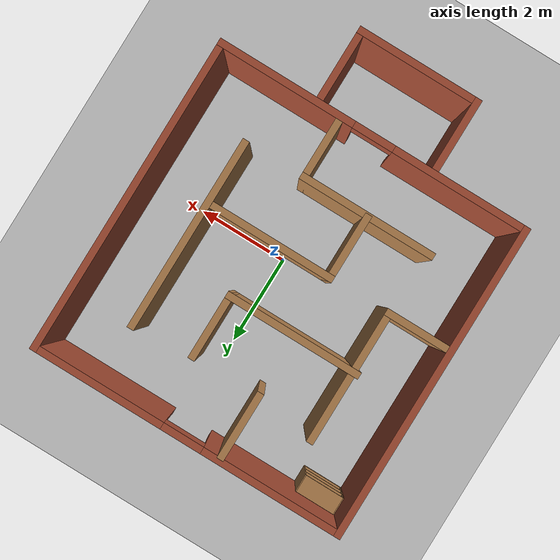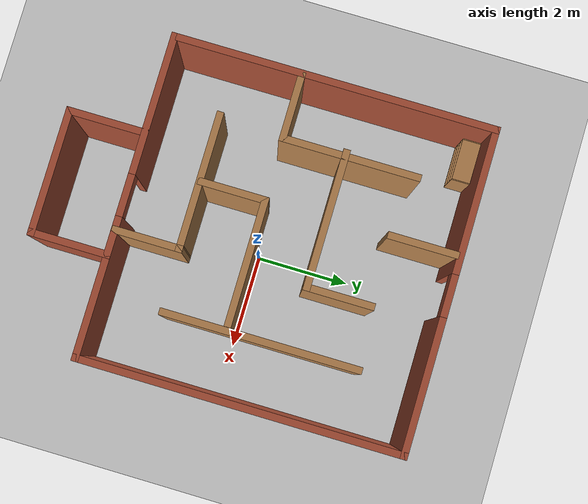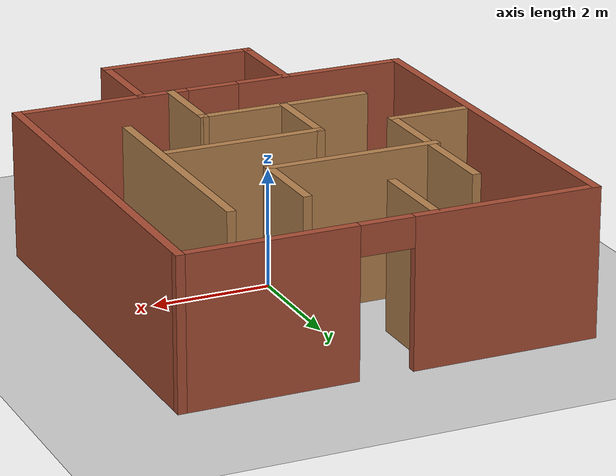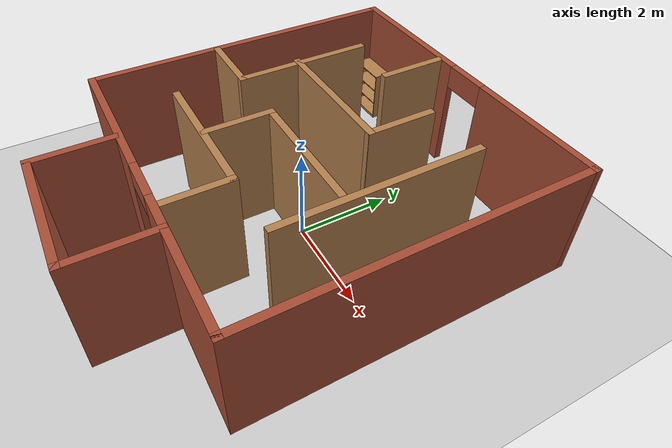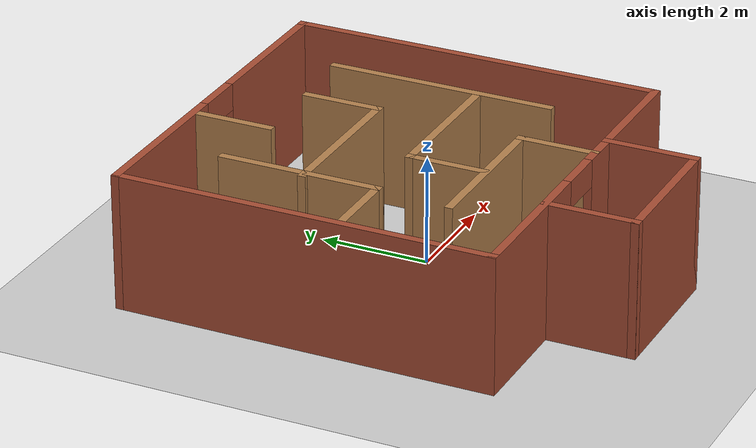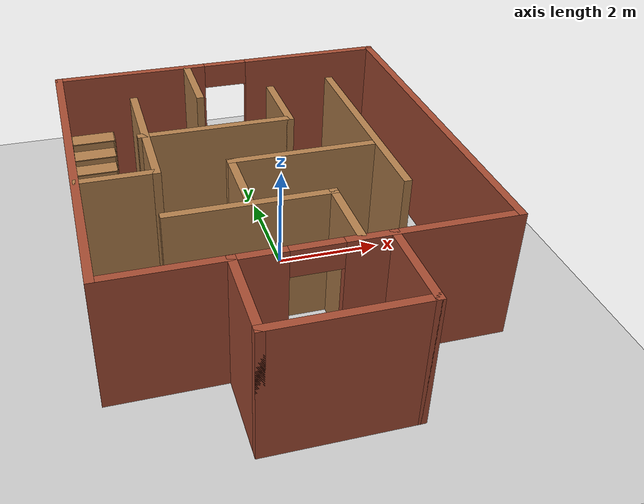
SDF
<sdf version="1.7">
 <world name="default">
  <light name="sun" type="directional">
   <pose>0 0 10 0 -0 0</pose>
   <diffuse>0.8 0.8 0.8 1</diffuse>
   <specular>0.2 0.2 0.2 1</specular>
   <attenuation>
    <range>1000</range>
    <constant>0.9</constant>
    <linear>0.01</linear>
    <quadratic>0.001</quadratic>
   </attenuation>
   <direction>-0.5 0.1 -0.9</direction>
   <spot><inner_angle>0</inner_angle><outer_angle>0</outer_angle><falloff>0</falloff></spot>
  </light>
  <model name="ground_plane">
   <static>1</static>
   <link name="link">
    <collision name="collision">
     <geometry><plane><normal>0 0 1</normal><size>100 100</size></plane></geometry>
     <surface><friction><ode><mu>100</mu><mu2>50</mu2></ode></friction></surface>
    </collision>
    <visual name="visual">
     <cast_shadows>0</cast_shadows>
     <geometry><plane><normal>0 0 1</normal><size>100 100</size></plane></geometry>
     <material>
      <script><uri>file://media/materials/scripts/gazebo.material</uri><name>Gazebo/Grey</name></script>
     </material>
    </visual>
   </link>
  </model>
  <gravity>0 0 -9.8</gravity>
  <magnetic_field>6e-06 2.3e-05 -4.2e-05</magnetic_field>
  <atmosphere type="adiabatic"/>
  <physics type="ode">
   <max_step_size>0.001</max_step_size>
   <real_time_factor>1</real_time_factor>
   <real_time_update_rate>1000</real_time_update_rate>
  </physics>
  <scene><ambient>0.4 0.4 0.4 1</ambient><background>0.7 0.7 0.7 1</background><shadows>1</shadows></scene>
  <audio><device>default</device></audio>
  <spherical_coordinates>
   <surface_model>EARTH_WGS84</surface_model>
   <latitude_deg>0</latitude_deg>
   <longitude_deg>0</longitude_deg>
   <elevation>0</elevation>
   <heading_deg>0</heading_deg>
  </spherical_coordinates>
  <model name="maze">
   <pose>-0.262199 -0.262234 0 0 -0 0</pose>
   <link name="Wall_0">
    <collision name="Wall_0_Collision">
     <geometry><box><size>7 0.15 2.5</size></box></geometry>
     <pose>0 0 1.25 0 -0 0</pose>
    </collision>
    <visual name="Wall_0_Visual">
     <pose>0 0 1.25 0 -0 0</pose>
     <geometry><box><size>7 0.15 2.5</size></box></geometry>
     <material>
      <script><uri>file://media/materials/scripts/gazebo.material</uri><name>Gazebo/Bricks</name></script>
      <ambient>1 1 1 1</ambient>
     </material>
     <meta><layer>0</layer></meta>
    </visual>
    <pose>-3.425 0.801995 0 0 -0 -1.5708</pose>
   </link>
   <link name="Wall_1">
    <pose>0 -2.62301 0 0 -0 0</pose>
    <visual name="Wall_1_Visual_0">
     <pose>-1.97589 0 1.25 0 -0 0</pose>
     <geometry><box><size>3.04822 0.15 2.5</size></box></geometry>
     <material>
      <script><uri>file://media/materials/scripts/gazebo.material</uri><name>Gazebo/Bricks</name></script>
      <ambient>1 1 1 1</ambient>
     </material>
     <meta><layer>0</layer></meta>
    </visual>
    <collision name="Wall_1_Collision_0">
     <geometry><box><size>3.04822 0.15 2.5</size></box></geometry>
     <pose>-1.97589 0 1.25 0 -0 0</pose>
    </collision>
    <visual name="Wall_1_Visual_1">
     <pose>1.97411 0 1.25 0 -0 0</pose>
     <geometry><box><size>3.05178 0.15 2.5</size></box></geometry>
     <material>
      <script><uri>file://media/materials/scripts/gazebo.material</uri><name>Gazebo/Bricks</name></script>
      <ambient>1 1 1 1</ambient>
     </material>
     <meta><layer>0</layer></meta>
    </visual>
    <collision name="Wall_1_Collision_1">
     <geometry><box><size>3.05178 0.15 2.5</size></box></geometry>
     <pose>1.97411 0 1.25 0 -0 0</pose>
    </collision>
    <visual name="Wall_1_Visual_2">
     <pose>-0.001779 0 2.25 0 -0 0</pose>
     <geometry><box><size>0.9 0.15 0.5</size></box></geometry>
     <material>
      <script><uri>file://media/materials/scripts/gazebo.material</uri><name>Gazebo/Bricks</name></script>
      <ambient>1 1 1 1</ambient>
     </material>
     <meta><layer>0</layer></meta>
    </visual>
    <collision name="Wall_1_Collision_2">
     <geometry><box><size>0.9 0.15 0.5</size></box></geometry>
     <pose>-0.001779 0 2.25 0 -0 0</pose>
    </collision>
   </link>
   <link name="Wall_11">
    <collision name="Wall_11_Collision">
     <geometry><box><size>3 0.15 2.5</size></box></geometry>
     <pose>0 0 1.25 0 -0 0</pose>
    </collision>
    <visual name="Wall_11_Visual">
     <pose>0 0 1.25 0 -0 0</pose>
     <geometry><box><size>3 0.15 2.5</size></box></geometry>
     <material>
      <script><uri>file://media/materials/scripts/gazebo.material</uri><name>Gazebo/Wood</name></script>
      <ambient>1 1 1 1</ambient>
     </material>
     <meta><layer>0</layer></meta>
    </visual>
    <pose>-0.676839 1.42858 0 0 -0 0</pose>
   </link>
   <link name="Wall_12">
    <collision name="Wall_12_Collision">
     <geometry><box><size>1.5 0.15 2.5</size></box></geometry>
     <pose>0 0 1.25 0 -0 0</pose>
    </collision>
    <visual name="Wall_12_Visual">
     <pose>0 0 1.25 0 -0 0</pose>
     <geometry><box><size>1.5 0.15 2.5</size></box></geometry>
     <material>
      <script><uri>file://media/materials/scripts/gazebo.material</uri><name>Gazebo/Wood</name></script>
      <ambient>1 1 1 1</ambient>
     </material>
     <meta><layer>0</layer></meta>
    </visual>
    <pose>0.748161 2.10358 0 0 -0 1.5708</pose>
   </link>
   <link name="Wall_16">
    <collision name="Wall_16_Collision">
     <geometry><box><size>1.5 0.15 2.5</size></box></geometry>
     <pose>0 0 1.25 0 -0 0</pose>
    </collision>
    <visual name="Wall_16_Visual">
     <pose>0 0 1.25 0 -0 0</pose>
     <geometry><box><size>1.5 0.15 2.5</size></box></geometry>
     <material>
      <script><uri>file://media/materials/scripts/gazebo.material</uri><name>Gazebo/Wood</name></script>
      <ambient>1 1 1 1</ambient>
     </material>
     <meta><layer>0</layer></meta>
    </visual>
    <pose>-0.733051 3.44553 0 0 -0 -1.5708</pose>
   </link>
   <link name="Wall_18">
    <collision name="Wall_18_Collision">
     <geometry><box><size>4.25 0.15 2.5</size></box></geometry>
     <pose>0 0 1.25 0 -0 0</pose>
    </collision>
    <visual name="Wall_18_Visual">
     <pose>0 0 1.25 0 -0 0</pose>
     <geometry><box><size>4.25 0.15 2.5</size></box></geometry>
     <material>
      <script><uri>file://media/materials/scripts/gazebo.material</uri><name>Gazebo/Wood</name></script>
      <ambient>1 1 1 1</ambient>
     </material>
     <meta><layer>0</layer></meta>
    </visual>
    <pose>2.05015 0.838625 0 0 -0 -1.5708</pose>
   </link>
   <link name="Wall_2">
    <collision name="Wall_2_Collision">
     <geometry><box><size>7 0.15 2.5</size></box></geometry>
     <pose>0 0 1.25 0 -0 0</pose>
    </collision>
    <visual name="Wall_2_Visual">
     <pose>0 0 1.25 0 -0 0</pose>
     <geometry><box><size>7 0.15 2.5</size></box></geometry>
     <material>
      <script><uri>file://media/materials/scripts/gazebo.material</uri><name>Gazebo/Bricks</name></script>
      <ambient>1 1 1 1</ambient>
     </material>
     <meta><layer>0</layer></meta>
    </visual>
    <pose>3.425 0.801995 0 0 -0 1.5708</pose>
   </link>
   <link name="Wall_25">
    <collision name="Wall_25_Collision">
     <geometry><box><size>2.75 0.15 2.5</size></box></geometry>
     <pose>0 0 1.25 0 -0 0</pose>
    </collision>
    <visual name="Wall_25_Visual">
     <pose>0 0 1.25 0 -0 0</pose>
     <geometry><box><size>2.75 0.15 2.5</size></box></geometry>
     <material>
      <script><uri>file://media/materials/scripts/gazebo.material</uri><name>Gazebo/Wood</name></script>
      <ambient>1 1 1 1</ambient>
     </material>
     <meta><layer>0</layer></meta>
    </visual>
    <pose>0.597366 0.120632 0 0 -0 0</pose>
   </link>
   <link name="Wall_27">
    <collision name="Wall_27_Collision">
     <geometry><box><size>1.5 0.15 2.5</size></box></geometry>
     <pose>0 0 1.25 0 -0 0</pose>
    </collision>
    <visual name="Wall_27_Visual">
     <pose>0 0 1.25 0 -0 0</pose>
     <geometry><box><size>1.5 0.15 2.5</size></box></geometry>
     <material>
      <script><uri>file://media/materials/scripts/gazebo.material</uri><name>Gazebo/Wood</name></script>
      <ambient>1 1 1 1</ambient>
     </material>
     <meta><layer>0</layer></meta>
    </visual>
    <pose>-0.702634 -0.554368 0 0 -0 -1.5708</pose>
   </link>
   <link name="Wall_3">
    <pose>0 4.22699 0 0 -0 3.14159</pose>
    <visual name="Wall_3_Visual_0">
     <pose>-2.02658 0 1.25 0 -0 0</pose>
     <geometry><box><size>2.94684 0.15 2.5</size></box></geometry>
     <material>
      <script><uri>file://media/materials/scripts/gazebo.material</uri><name>Gazebo/Bricks</name></script>
      <ambient>1 1 1 1</ambient>
     </material>
     <meta><layer>0</layer></meta>
    </visual>
    <collision name="Wall_3_Collision_0">
     <geometry><box><size>2.94684 0.15 2.5</size></box></geometry>
     <pose>-2.02658 0 1.25 0 -0 0</pose>
    </collision>
    <visual name="Wall_3_Visual_1">
     <pose>1.92342 0 1.25 0 -0 0</pose>
     <geometry><box><size>3.15316 0.15 2.5</size></box></geometry>
     <material>
      <script><uri>file://media/materials/scripts/gazebo.material</uri><name>Gazebo/Bricks</name></script>
      <ambient>1 1 1 1</ambient>
     </material>
     <meta><layer>0</layer></meta>
    </visual>
    <collision name="Wall_3_Collision_1">
     <geometry><box><size>3.15316 0.15 2.5</size></box></geometry>
     <pose>1.92342 0 1.25 0 -0 0</pose>
    </collision>
    <visual name="Wall_3_Visual_2">
     <pose>-0.103162 0 2.25 0 -0 0</pose>
     <geometry><box><size>0.9 0.15 0.5</size></box></geometry>
     <material>
      <script><uri>file://media/materials/scripts/gazebo.material</uri><name>Gazebo/Bricks</name></script>
      <ambient>1 1 1 1</ambient>
     </material>
     <meta><layer>0</layer></meta>
    </visual>
    <collision name="Wall_3_Collision_2">
     <geometry><box><size>0.9 0.15 0.5</size></box></geometry>
     <pose>-0.103162 0 2.25 0 -0 0</pose>
    </collision>
   </link>
   <link name="Wall_30">
    <collision name="Wall_30_Collision">
     <geometry><box><size>3 0.15 2.5</size></box></geometry>
     <pose>0 0 1.25 0 -0 0</pose>
    </collision>
    <visual name="Wall_30_Visual">
     <pose>0 0 1.25 0 -0 0</pose>
     <geometry><box><size>3 0.15 2.5</size></box></geometry>
     <material>
      <script><uri>file://media/materials/scripts/gazebo.material</uri><name>Gazebo/Wood</name></script>
      <ambient>1 1 1 1</ambient>
     </material>
     <meta><layer>0</layer></meta>
    </visual>
    <pose>-0.692047 -1.26336 0 0 -0 0</pose>
   </link>
   <link name="Wall_31">
    <collision name="Wall_31_Collision">
     <geometry><box><size>1.5 0.15 2.5</size></box></geometry>
     <pose>0 0 1.25 0 -0 0</pose>
    </collision>
    <visual name="Wall_31_Visual">
     <pose>0 0 1.25 0 -0 0</pose>
     <geometry><box><size>1.5 0.15 2.5</size></box></geometry>
     <material>
      <script><uri>file://media/materials/scripts/gazebo.material</uri><name>Gazebo/Wood</name></script>
      <ambient>1 1 1 1</ambient>
     </material>
     <meta><layer>0</layer></meta>
    </visual>
    <pose>0.732953 -1.93836 0 0 -0 -1.5708</pose>
   </link>
   <link name="Wall_37">
    <collision name="Wall_37_Collision">
     <geometry><box><size>1.75 0.15 2.5</size></box></geometry>
     <pose>0 0 1.25 0 -0 0</pose>
    </collision>
    <visual name="Wall_37_Visual">
     <pose>0 0 1.25 0 -0 0</pose>
     <geometry><box><size>1.75 0.15 2.5</size></box></geometry>
     <material>
      <script><uri>file://media/materials/scripts/gazebo.material</uri><name>Gazebo/Bricks</name></script>
      <ambient>1 1 1 1</ambient>
     </material>
     <meta><layer>0</layer></meta>
    </visual>
    <pose>-1.33776 -3.42699 0 0 -0 -1.5708</pose>
   </link>
   <link name="Wall_38">
    <collision name="Wall_38_Collision">
     <geometry><box><size>2.75 0.15 2.5</size></box></geometry>
     <pose>0 0 1.25 0 -0 0</pose>
    </collision>
    <visual name="Wall_38_Visual">
     <pose>0 0 1.25 0 -0 0</pose>
     <geometry><box><size>2.75 0.15 2.5</size></box></geometry>
     <material>
      <script><uri>file://media/materials/scripts/gazebo.material</uri><name>Gazebo/Bricks</name></script>
      <ambient>1 1 1 1</ambient>
     </material>
     <meta><layer>0</layer></meta>
    </visual>
    <pose>-0.037764 -4.22699 0 0 -0 0</pose>
   </link>
   <link name="Wall_39">
    <collision name="Wall_39_Collision">
     <geometry><box><size>1.75 0.15 2.5</size></box></geometry>
     <pose>0 0 1.25 0 -0 0</pose>
    </collision>
    <visual name="Wall_39_Visual">
     <pose>0 0 1.25 0 -0 0</pose>
     <geometry><box><size>1.75 0.15 2.5</size></box></geometry>
     <material>
      <script><uri>file://media/materials/scripts/gazebo.material</uri><name>Gazebo/Bricks</name></script>
      <ambient>1 1 1 1</ambient>
     </material>
     <meta><layer>0</layer></meta>
    </visual>
    <pose>1.26224 -3.42699 0 0 -0 1.5708</pose>
   </link>
   <link name="Wall_8">
    <collision name="Wall_8_Collision">
     <geometry><box><size>1.5 0.15 2.5</size></box></geometry>
     <pose>0 0 1.25 0 -0 0</pose>
    </collision>
    <visual name="Wall_8_Visual">
     <pose>0 0 1.25 0 -0 0</pose>
     <geometry><box><size>1.5 0.15 2.5</size></box></geometry>
     <material>
      <script><uri>file://media/materials/scripts/gazebo.material</uri><name>Gazebo/Wood</name></script>
      <ambient>1 1 1 1</ambient>
     </material>
     <meta><layer>0</layer></meta>
    </visual>
    <pose>-2.70437 0.105424 0 0 -0 0</pose>
   </link>
   <link name="Wall_9">
    <collision name="Wall_9_Collision">
     <geometry><box><size>3 0.15 2.5</size></box></geometry>
     <pose>0 0 1.25 0 -0 0</pose>
    </collision>
    <visual name="Wall_9_Visual">
     <pose>0 0 1.25 0 -0 0</pose>
     <geometry><box><size>3 0.15 2.5</size></box></geometry>
     <material>
      <script><uri>file://media/materials/scripts/gazebo.material</uri><name>Gazebo/Wood</name></script>
      <ambient>1 1 1 1</ambient>
     </material>
     <meta><layer>0</layer></meta>
    </visual>
    <pose>-2.02937 1.53042 0 0 -0 1.5708</pose>
   </link>
   <static>1</static>
  </model>
  <model name="bookshelf">
   <static>1</static>
   <link name="link">
    <inertial><mass>1</mass></inertial>
    <collision name="back">
     <pose>0 0.005 0.6 0 -0 0</pose>
     <geometry><box><size>0.9 0.01 1.2</size></box></geometry>
    </collision>
    <visual name="visual1">
     <pose>0 0.005 0.6 0 -0 0</pose>
     <geometry><box><size>0.9 0.01 1.2</size></box></geometry>
     <material>
      <script><uri>file://media/materials/scripts/gazebo.material</uri><name>Gazebo/Wood</name></script>
     </material>
    </visual>
    <collision name="left_side">
     <pose>0.45 -0.195 0.6 0 -0 0</pose>
     <geometry><box><size>0.02 0.4 1.2</size></box></geometry>
    </collision>
    <visual name="visual2">
     <pose>0.45 -0.195 0.6 0 -0 0</pose>
     <geometry><box><size>0.02 0.4 1.2</size></box></geometry>
     <material>
      <script><uri>file://media/materials/scripts/gazebo.material</uri><name>Gazebo/Wood</name></script>
     </material>
    </visual>
    <collision name="right_side">
     <pose>-0.45 -0.195 0.6 0 -0 0</pose>
     <geometry><box><size>0.02 0.4 1.2</size></box></geometry>
    </collision>
    <visual name="visual3">
     <pose>-0.45 -0.195 0.6 0 -0 0</pose>
     <geometry><box><size>0.02 0.4 1.2</size></box></geometry>
     <material>
      <script><uri>file://media/materials/scripts/gazebo.material</uri><name>Gazebo/Wood</name></script>
     </material>
    </visual>
    <collision name="bottom">
     <pose>0 -0.195 0.03 0 -0 0</pose>
     <geometry><box><size>0.88 0.4 0.06</size></box></geometry>
    </collision>
    <visual name="visual4">
     <pose>0 -0.195 0.03 0 -0 0</pose>
     <geometry><box><size>0.88 0.4 0.06</size></box></geometry>
     <material>
      <script><uri>file://media/materials/scripts/gazebo.material</uri><name>Gazebo/Wood</name></script>
     </material>
    </visual>
    <collision name="top">
     <pose>0 -0.195 1.19 0 -0 0</pose>
     <geometry><box><size>0.88 0.4 0.02</size></box></geometry>
    </collision>
    <visual name="visual5">
     <pose>0 -0.195 1.19 0 -0 0</pose>
     <geometry><box><size>0.88 0.4 0.02</size></box></geometry>
     <material>
      <script><uri>file://media/materials/scripts/gazebo.material</uri><name>Gazebo/Wood</name></script>
     </material>
    </visual>
    <collision name="low_shelf">
     <pose>0 -0.195 0.43 0 -0 0</pose>
     <geometry><box><size>0.88 0.4 0.02</size></box></geometry>
    </collision>
    <visual name="visual6">
     <pose>0 -0.195 0.43 0 -0 0</pose>
     <geometry><box><size>0.88 0.4 0.02</size></box></geometry>
     <material>
      <script><uri>file://media/materials/scripts/gazebo.material</uri><name>Gazebo/Wood</name></script>
     </material>
    </visual>
    <collision name="high_shelf">
     <pose>0 -0.195 0.8 0 -0 0</pose>
     <geometry><box><size>0.88 0.4 0.02</size></box></geometry>
    </collision>
    <visual name="visual7">
     <pose>0 -0.195 0.8 0 -0 0</pose>
     <geometry><box><size>0.88 0.4 0.02</size></box></geometry>
     <material>
      <script><uri>file://media/materials/scripts/gazebo.material</uri><name>Gazebo/Wood</name></script>
     </material>
    </visual>
   </link>
   <pose>-3.14742 3.8877 0 0 -0 0</pose>
  </model>
 </world>
</sdf>
